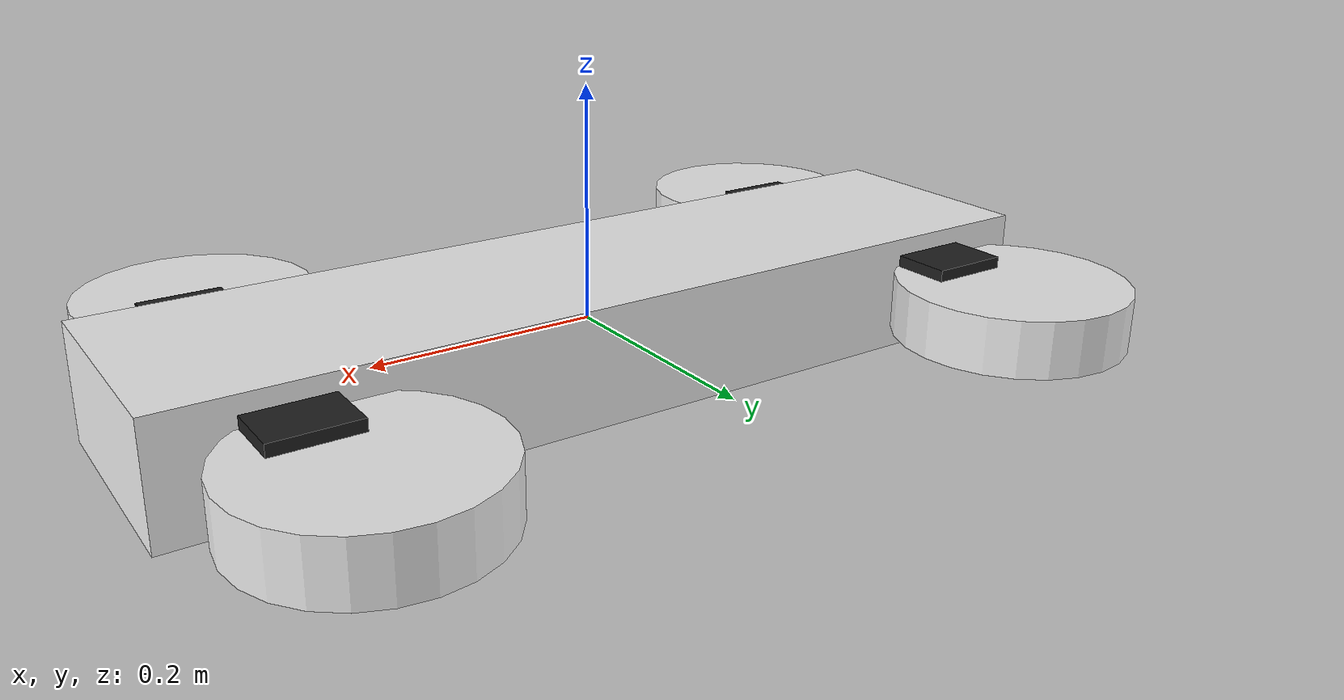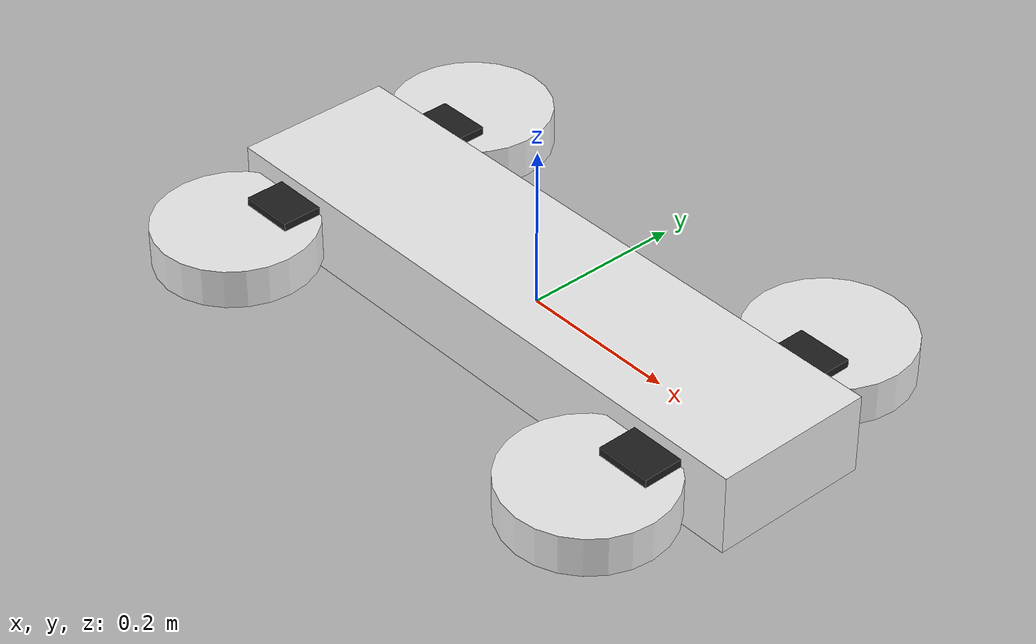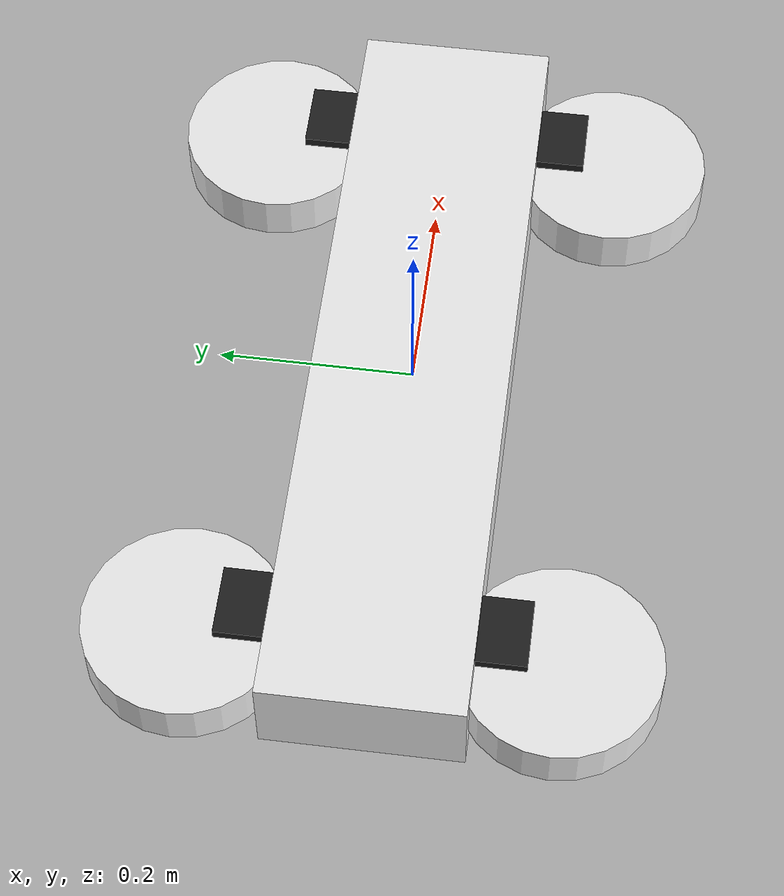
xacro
<?xml version="1.0"?>

<robot xmlns:xacro="http://www.ros.org/wiki/xacro" name="wakanda_marine">

<xacro:property name="axis_o" value="0 1 0"/>
<xacro:property name="axle_s" value="0.07 0.3 0.07"/>

    <link name="base_link">
        <visual>
            <geometry>
                <box size="0.8 0.2 0.1"/>
            </geometry>
        </visual>
        <collision>
            <geometry>
                <box size="0.8 0.2 0.1"/>
            </geometry>
        </collision>
        <inertial>
            <mass value="0.2"/>
            <inertia ixx="0.4" ixy="0.0" ixz="0.0" iyy="0.4" iyz="0.0" izz="0.2"/>
        </inertial>
    </link>
    <gazebo reference="base_link">
        <material>Gazebo/White</material>
    </gazebo>

    <xacro:macro name="axle" params="prefix reflect">
    <link name="${prefix}_axle">
        <center_of_buoyancy>"0.0 0.0 0.0"</center_of_buoyancy>
        <neutrally_buoyant>0</neutrally_buoyant>
        <center_of_volume>1 2 3</center_of_volume>
        <volume>50</volume>
        <visual>
            <geometry>
                <box size="${axle_s}"/>
            </geometry>
        </visual>
        <collision>
                <geometry>
                    <box size="${axle_s}"/>
                </geometry>
            </collision>
            <inertial>
                <mass value="0.2"/>
                <inertia ixx="0.4" ixy="0.0" ixz="0.0" iyy="0.4" iyz="0.0" izz="0.2"/>
            </inertial>
    </link>

    <joint name="base_to_${prefix}_axle" type="fixed">
        <parent link="base_link"/>
        <child link="${prefix}_axle"/>
        <origin xyz="${reflect *0.3} 0 0"/>
    </joint>
    <gazebo reference="${prefix}_axle">
            <material>Gazebo/Black</material>
        </gazebo>
    </xacro:macro>
    <xacro:axle prefix="front" reflect="1"/>
    <xacro:axle prefix="back" reflect="-1"/>

    <xacro:macro name="thruster" params="prefix suffix reflect">
    <link name="${prefix}_${suffix}_thruster">
        <visual>
            <geometry>
                <cylinder length="0.05" radius="0.1"/>
            </geometry>
            <origin xyz="-0.02 ${reflect*0.03} 0"/>
        </visual>
        <collision>
                <geometry>
                    <cylinder length="0.05" radius="0.1"/>
                </geometry>
            </collision>
            <inertial>
                <mass value="0.2"/>
                <inertia ixx="0.4" ixy="0.0" ixz="0.0" iyy="0.4" iyz="0.0" izz="0.2"/>
            </inertial>
    </link>

    <joint name="base_to_${prefix}_${suffix}_thruster" type="continuous">
        <parent link="${prefix}_axle"/>
        <child link="${prefix}_${suffix}_thruster"/>
        <axis xyz="${axis_o}"/>
        <origin xyz="0 ${reflect*0.15} 0"/>
    </joint>
    <gazebo reference="${prefix}_${suffix}_thruster">
            <material>Gazebo/White</material>
        </gazebo>
        <transmission name="${prefix}_${suffix}_thruster_transmission">
            <type>transmission_interface/SimpleTransmission</type>
            <actuator name="${prefix}_${suffix}_thruster_motor">
                <mechanicalReduction>1</mechanicalReduction>
            </actuator>
            <joint name="base_to_${prefix}_${suffix}_thruster">
                <hardwareInterface>hardware_interface/PositionJointInterface</hardwareInterface>
            </joint>
        </transmission>
    </xacro:macro>
    <xacro:thruster prefix="front" suffix="left"  reflect="1"  />
    <xacro:thruster prefix="front" suffix="right" reflect="-1" />
    <xacro:thruster prefix="back"  suffix="left"  reflect="1"  />
    <xacro:thruster prefix="back"  suffix="right" reflect="-1" />

</robot>
